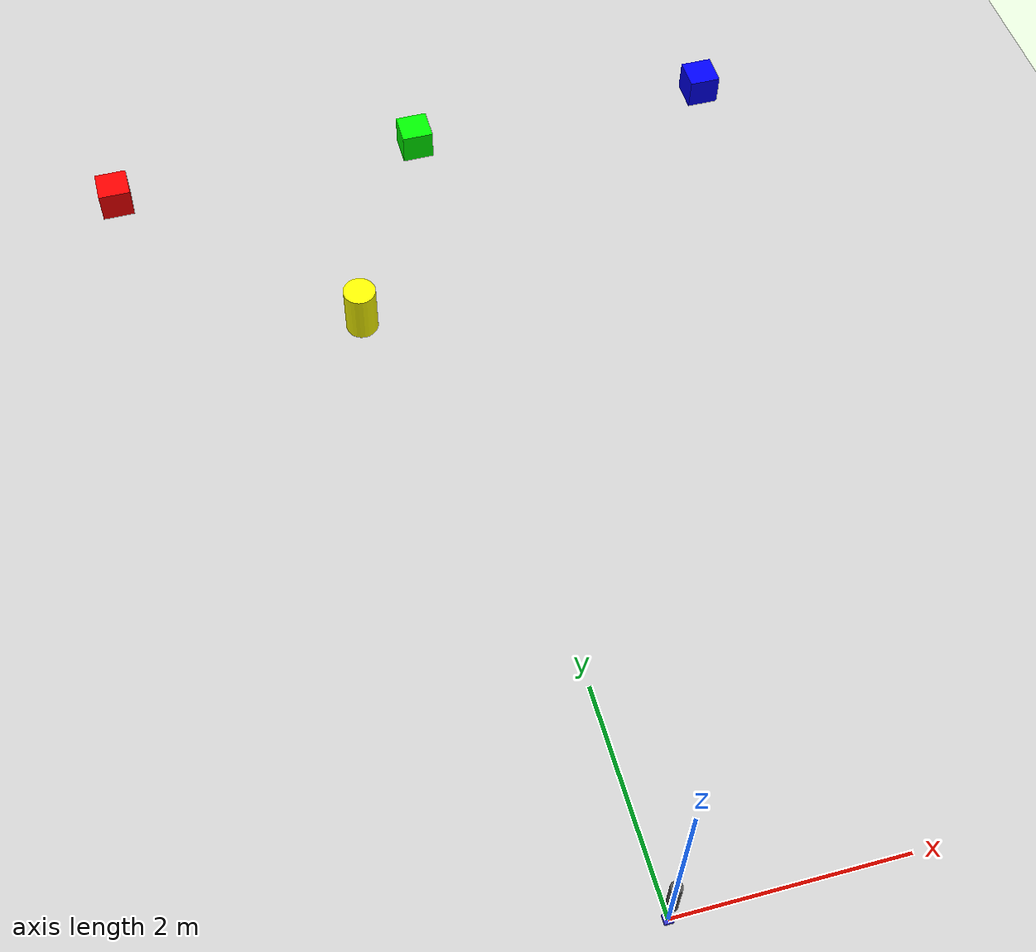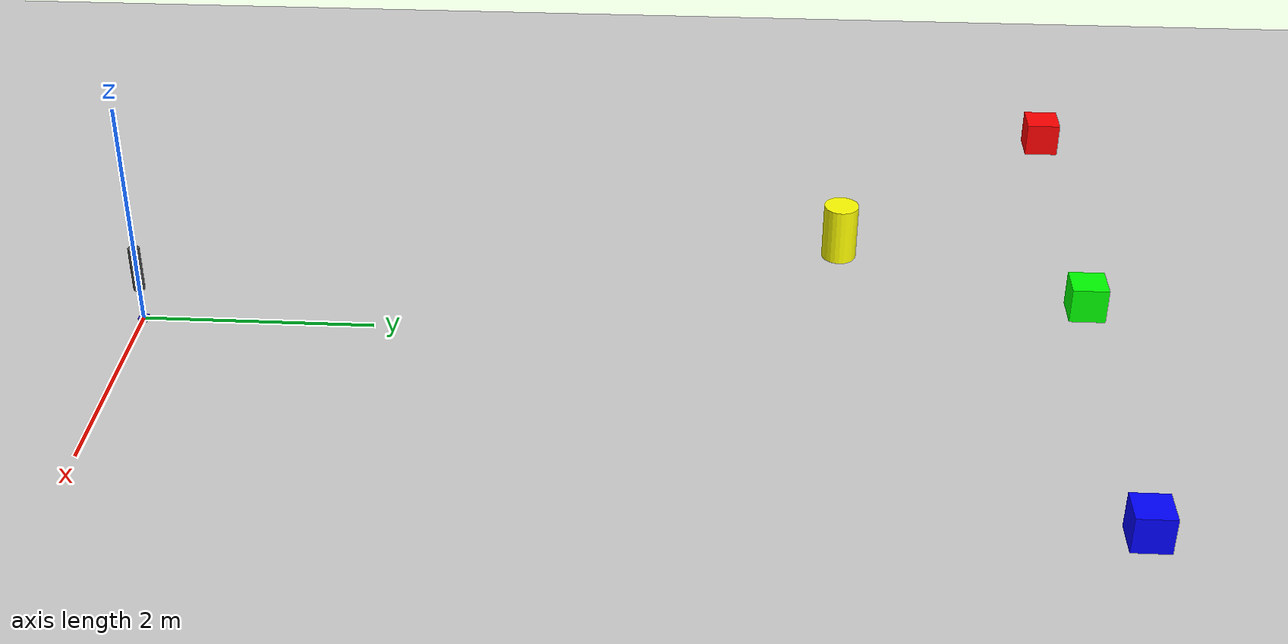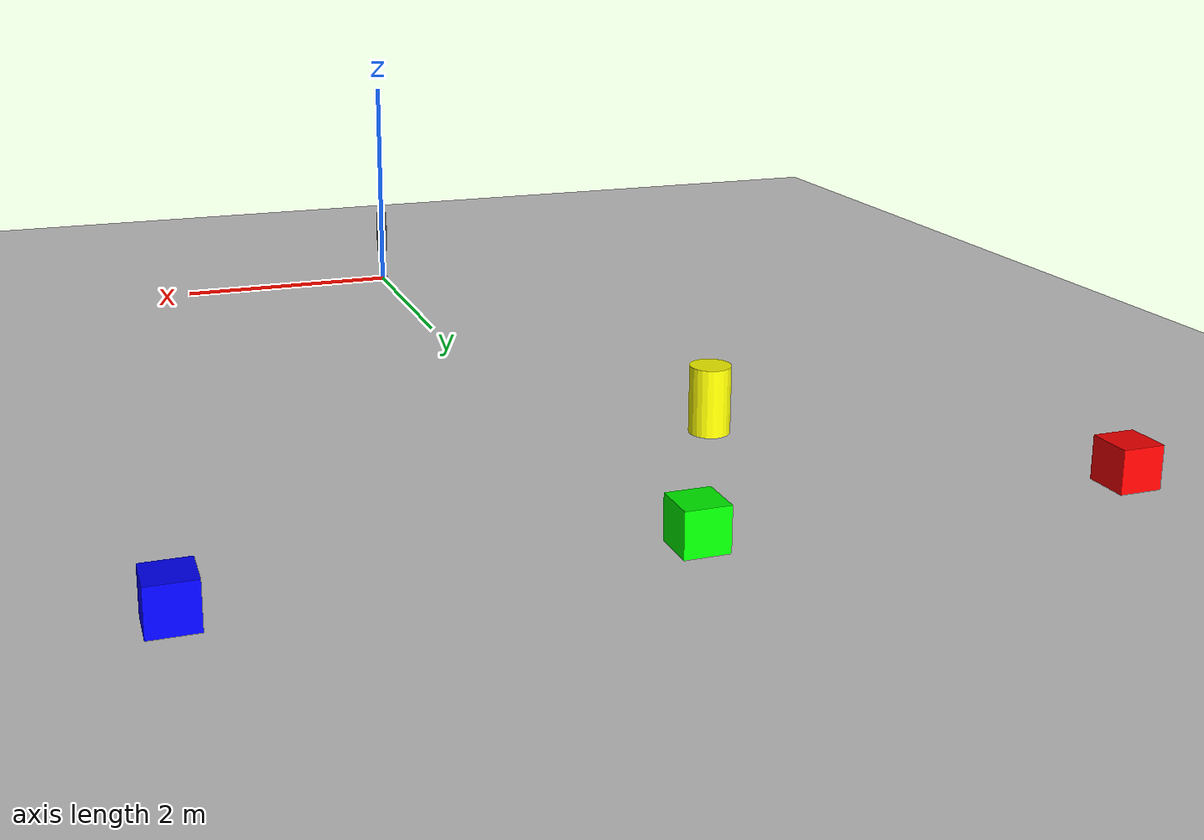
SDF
<?xml version="1.0"?>
<sdf version="1.6">
  <world name="tracking_world">

    <!-- ── Lighting ──────────────────────────────── -->
    <include>
      <uri>model://sun</uri>
    </include>

    <!-- ── Camera Saver Plugin (saves frames to /tmp/gazebo_frame.jpg) ── -->
    <plugin name="camera_saver" filename="/home/fu/stm32demo_ws/gazebo/libCameraSaver.so"/>

    <!-- ── Ground plane ───────────────────────────── -->
    <include>
      <uri>model://ground_plane</uri>
    </include>

    <!-- Pan-Tilt Camera                                -->
    <include>
      <uri>model://pan_tilt_camera</uri>
      <pose>0 0 0 0 0 0</pose>
    </include>

    <!-- Tracking targets                              -->

    <!-- Red cube — left side -->
    <model name="target_red">
      <pose>-3 8 0.5 0 0 0</pose>
      <static>1</static>
      <link name="link">
        <visual name="visual">
          <geometry><box><size>0.3 0.3 0.3</size></box></geometry>
          <material><ambient>1 0 0 1</ambient></material>
        </visual>
      </link>
    </model>

    <!-- Green cube — center -->
    <model name="target_green">
      <pose>0 8 0.5 0 0 0</pose>
      <static>1</static>
      <link name="link">
        <visual name="visual">
          <geometry><box><size>0.3 0.3 0.3</size></box></geometry>
          <material><ambient>0 1 0 1</ambient></material>
        </visual>
      </link>
    </model>

    <!-- Blue cube — right side -->
    <model name="target_blue">
      <pose>3 8 0.5 0 0 0</pose>
      <static>1</static>
      <link name="link">
        <visual name="visual">
          <geometry><box><size>0.3 0.3 0.3</size></box></geometry>
          <material><ambient>0 0 1 1</ambient></material>
        </visual>
      </link>
    </model>

    <!-- Yellow cylinder — moving target potential -->
    <model name="target_yellow">
      <pose>-1 6 0.5 0 0 0</pose>
      <static>1</static>
      <link name="link">
        <visual name="visual">
          <geometry><cylinder><radius>0.15</radius><length>0.5</length></cylinder></geometry>
          <material><ambient>1 1 0 1</ambient></material>
        </visual>
      </link>
    </model>

  </world>
</sdf>

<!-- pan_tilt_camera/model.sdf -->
<sdf version="1.6">
  <model name="pan_tilt_camera">

    <!-- Base — fixed to world                        -->
    <link name="base_link">
      <pose>0 0 0.5 0 0 0</pose>
      <inertial>
        <mass>0.1</mass>
        <inertia>
          <ixx>0.001</ixx><ixy>0</ixy><ixz>0</ixz>
          <iyy>0.001</iyy><iyz>0</iyz>
          <izz>0.001</izz>
        </inertia>
      </inertial>
      <visual name="base_visual">
        <geometry><cylinder><radius>0.05</radius><length>0.4</length></cylinder></geometry>
        <material><ambient>0.3 0.3 0.3 1</ambient></material>
      </visual>
      <collision name="base_collision">
        <geometry><cylinder><radius>0.05</radius><length>0.4</length></cylinder></geometry>
      </collision>
    </link>

    <!-- Pan joint (yaw) — rotates around Z          -->
    <joint name="pan_joint" type="revolute">
      <parent>base_link</parent>
      <child>pan_link</child>
      <pose>0 0 0.2 0 0 0</pose>
      <axis>
        <xyz>0 0 1</xyz>
        <limit>
          <lower>-3.14</lower>
          <upper>3.14</upper>
          <effort>10</effort>
          <velocity>5</velocity>
        </limit>
        <dynamics>
          <damping>0.3</damping>
          <friction>0.1</friction>
        </dynamics>
      </axis>
    </joint>

    <link name="pan_link">
      <inertial>
        <mass>0.05</mass>
        <inertia>
          <ixx>0.0001</ixx><ixy>0</ixy><ixz>0</ixz>
          <iyy>0.0001</iyy><iyz>0</iyz>
          <izz>0.0001</izz>
        </inertia>
      </inertial>
      <visual name="pan_visual">
        <geometry><box><size>0.08 0.08 0.04</size></box></geometry>
        <material><ambient>0.2 0.2 0.8 1</ambient></material>
      </visual>
    </link>

    <!-- Tilt joint (pitch) — rotates around Y        -->
    <joint name="tilt_joint" type="revolute">
      <parent>pan_link</parent>
      <child>tilt_link</child>
      <axis>
        <xyz>0 1 0</xyz>
        <limit>
          <lower>-1.05</lower>
          <upper>1.05</upper>
          <effort>5</effort>
          <velocity>3</velocity>
        </limit>
        <dynamics>
          <damping>0.3</damping>
          <friction>0.1</friction>
        </dynamics>
      </axis>
    </joint>

    <link name="tilt_link">
      <inertial>
        <mass>0.03</mass>
        <inertia>
          <ixx>0.00005</ixx><ixy>0</ixy><ixz>0</ixz>
          <iyy>0.00005</iyy><iyz>0</iyz>
          <izz>0.00005</izz>
        </inertia>
      </inertial>
      <visual name="tilt_visual">
        <pose>0 0 -0.02 0 0 0</pose>
        <geometry><box><size>0.06 0.06 0.03</size></box></geometry>
        <material><ambient>0.8 0.2 0.2 1</ambient></material>
      </visual>

      <!-- ── Camera sensor ────────────────────── -->
      <sensor name="camera" type="camera">
        <pose>0.04 0 0 0 0 0</pose>
        <always_on>1</always_on>
        <update_rate>30</update_rate>
        <visualize>1</visualize>
        <camera>
          <horizontal_fov>1.047</horizontal_fov>
          <image>
            <width>848</width>
            <height>480</height>
            <format>R8G8B8</format>
          </image>
          <clip>
            <near>0.1</near>
            <far>100</far>
          </clip>
        </camera>
      </sensor>
    </link>

    <!-- Pan + Tilt PID position controllers          -->
    <!-- Runtime angle update via:                    -->
    <!--   -m ignition.msgs.JointCmd                  -->
    <plugin name="joint_controllers"
            filename="/usr/lib/x86_64-linux-gnu/gazebo-11/plugins/libJointControlPlugin.so">
      <controller type="position">
        <joint>pan_joint</joint>
        <target>0.0</target>
        <pid_gains>30 0 3</pid_gains>
      </controller>
      <controller type="position">
        <joint>tilt_joint</joint>
        <target>0.0</target>
        <pid_gains>30 0 3</pid_gains>
      </controller>
    </plugin>

  </model>
</sdf>
